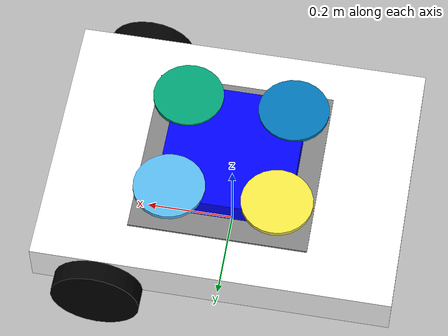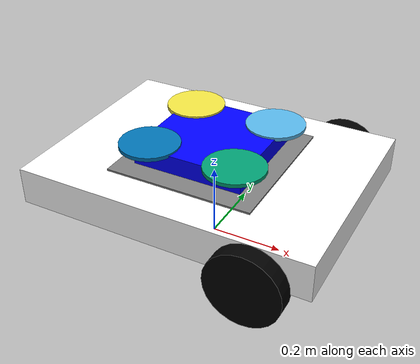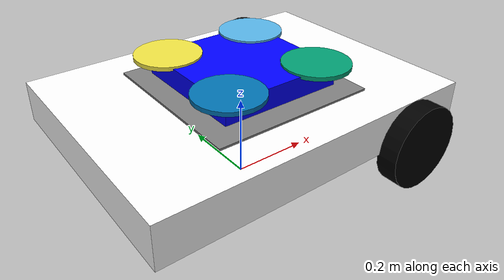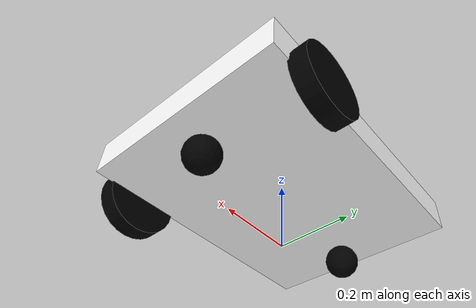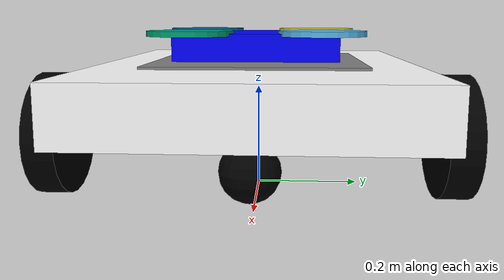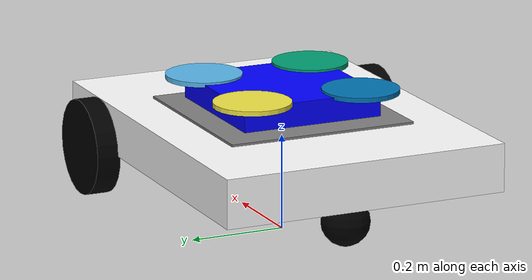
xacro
<?xml version="1.0"?>
<robot name="hybrid_robot" xmlns:xacro="http://www.ros.org/wiki/xacro">

    <xacro:include filename="hybrid_terrestrial.xacro" />
    <xacro:include filename="hybrid_aerial.xacro" />

    <link name="base_footprint"/>

    <joint name="base_footprint_joint" type="fixed">
        <parent link="base_footprint"/>
        <child link="world_anchor"/>
        <origin xyz="0 0 0" rpy="0 0 0"/>
    </joint>

    <link name="world_anchor">
        <inertial>
            <mass value="10.0"/>
            <inertia ixx="0.01" ixy="0" ixz="0" iyy="0.01" iyz="0" izz="0.01"/>
        </inertial>
    </link>

    <joint name="lift_joint" type="prismatic">
        <parent link="world_anchor" />
        <child link="base_link" />
        <origin xyz="0 0 0.05" rpy="0 0 0" />
        <axis xyz="0 0 1" />
        <limit lower="0.0" upper="5.0" effort="2000.0" velocity="2.0" />
        <dynamics damping="1.0" friction="0.0" />
    </joint>

    <xacro:drone_assembly />
    <joint name="drone_fixed_mount" type="fixed">
        <parent link="landing_pad" />
        <child link="drone_base_link" />
        <origin xyz="0 0 0.01" rpy="0 0 0" />
    </joint>

    <gazebo reference="lift_joint">
        <implicitSpringDamper>true</implicitSpringDamper>
    </gazebo>
    <gazebo reference="left_wheel_joint">
        <implicitSpringDamper>true</implicitSpringDamper>
    </gazebo>
    <gazebo reference="right_wheel_joint">
        <implicitSpringDamper>true</implicitSpringDamper>
    </gazebo>

    <ros2_control name="HybridControl" type="system">
        <hardware>
            <plugin>gazebo_ros2_control/GazeboSystem</plugin>
        </hardware>
        <joint name="left_wheel_joint">
            <command_interface name="velocity"/>
            <state_interface name="velocity"/>
            <state_interface name="position"/>
        </joint>
        <joint name="right_wheel_joint">
            <command_interface name="velocity"/>
            <state_interface name="velocity"/>
            <state_interface name="position"/>
        </joint>
        <joint name="lift_joint">
            <command_interface name="position"/>
            <state_interface name="position"/>
            <state_interface name="velocity"/>
        </joint>
    </ros2_control>

    <gazebo reference="world_anchor">
        <gravity>false</gravity>
    </gazebo>

    <gazebo>
        <plugin name="drone_flight_controller" filename="libgazebo_ros_planar_move.so">
            <ros>
                <namespace>/</namespace>
                <parameter name="use_sim_time" value="true" />
                <remapping>cmd_vel:=cmd_drone</remapping>
                <remapping>odom:=odom_drone</remapping>
            </ros>
            <update_rate>100</update_rate>
            <publish_rate>50</publish_rate>
            <publish_odom>true</publish_odom>
            <publish_odom_tf>true</publish_odom_tf>

            <robotBaseFrame>world_anchor</robotBaseFrame>
            <odometryFrame>odom</odometryFrame>
        </plugin>
    </gazebo>

    <gazebo>
        <plugin filename="libgazebo_ros2_control.so" name="gazebo_ros2_control">
            <parameters>$(find hybrid_robot_description)/config/terrestrial_control.yaml</parameters>
        </plugin>
    </gazebo>
</robot>

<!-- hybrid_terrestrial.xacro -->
<robot name="hybrid_robot" xmlns:xacro="http://www.ros.org/wiki/xacro">

    <xacro:property name="wheel_radius" value="0.1" />
    <xacro:property name="base_height" value="0.1" />
    <xacro:property name="base_mass" value="5.0" />
    <xacro:property name="base_length" value="0.8" />
    <xacro:property name="base_width" value="0.6" />
    <xacro:property name="wheel_width" value="0.05" />
    <xacro:property name="wheel_separation" value="0.64" />
    <xacro:property name="caster_radius" value="0.05" />
    <xacro:property name="caster_mass" value="0.1" />

    <xacro:macro name="default_inertial" params="mass">
        <inertial>
            <mass value="${mass}" />
            <inertia ixx="${0.08 * mass}" ixy="0.0" ixz="0.0" iyy="${0.08 * mass}" iyz="0.0" izz="${0.08 * mass}"/>
        </inertial>
    </xacro:macro>

    <link name="base_link">
        <visual>
            <origin xyz="0 0 ${wheel_radius + base_height/2}" rpy="0 0 0" />
            <geometry><box size="${base_length} ${base_width} ${base_height}" /></geometry>
            <material name="White"><color rgba="1 1 1 1"/></material>
        </visual>
        <collision>
            <origin xyz="0 0 ${wheel_radius + base_height/2}" rpy="0 0 0" />
            <geometry><box size="${base_length} ${base_width} ${base_height}" /></geometry>
        </collision>
        <xacro:default_inertial mass="${base_mass}"/>
    </link>

    <xacro:macro name="wheel_link" params="prefix parent_link x_offset y_offset">
        <link name="${prefix}_wheel_link">
            <visual>
                <origin xyz="0 0 0" rpy="1.5708 0 0" />
                <geometry><cylinder radius="${wheel_radius}" length="${wheel_width}" /></geometry>
                <material name="Black"><color rgba="0 0 0 1"/></material>
            </visual>
            <collision>
                <origin xyz="0 0 0" rpy="1.5708 0 0" />
                <geometry><cylinder radius="${wheel_radius}" length="${wheel_width}" /></geometry>
            </collision>
            <xacro:default_inertial mass="0.5" />
        </link>
        <gazebo reference="${prefix}_wheel_link">
            <material>Gazebo/Black</material>
            <mu1 value="1.0"/><mu2 value="1.0"/>
        </gazebo>
        <joint name="${prefix}_wheel_joint" type="continuous">
            <origin xyz="${x_offset} ${y_offset} ${wheel_radius}" rpy="0 0 0" />
            <parent link="${parent_link}" />
            <child link="${prefix}_wheel_link" />
            <axis xyz="0 1 0" />
        </joint>
    </xacro:macro>

    <xacro:wheel_link prefix="left" parent_link="base_link" x_offset="0.25" y_offset="${wheel_separation/2}" />
    <xacro:wheel_link prefix="right" parent_link="base_link" x_offset="0.25" y_offset="-${wheel_separation/2}" />

    <link name="caster_front_link">
        <visual><geometry><sphere radius="${caster_radius}"/></geometry><material name="Black"/></visual>
        <collision><geometry><sphere radius="${caster_radius}"/></geometry></collision>
        <xacro:default_inertial mass="${caster_mass}"/>
    </link>
    <joint name="caster_front_joint" type="fixed">
        <origin xyz="${base_length/2 - caster_radius*2} 0 ${caster_radius}" rpy="0 0 0"/>
        <parent link="base_link" /><child link="caster_front_link" />
    </joint>

    <link name="caster_rear_link">
        <visual><geometry><sphere radius="${caster_radius}"/></geometry><material name="Black"/></visual>
        <collision><geometry><sphere radius="${caster_radius}"/></geometry></collision>
        <xacro:default_inertial mass="${caster_mass}"/>
    </link>
    <joint name="caster_rear_joint" type="fixed">
        <origin xyz="${-base_length/2 + caster_radius*2} 0 ${caster_radius}" rpy="0 0 0"/>
        <parent link="base_link" /><child link="caster_rear_link" />
    </joint>

    <link name="landing_pad">
        <visual>
            <origin xyz="0 0 0" rpy="0 0 0" />
            <geometry><box size="0.4 0.4 0.01" /></geometry>
            <material name="Grey"><color rgba="0.5 0.5 0.5 1"/></material>
        </visual>
        <collision>
            <origin xyz="0 0 0" rpy="0 0 0" />
            <geometry><box size="0.4 0.4 0.01" /></geometry>
        </collision>
        <xacro:default_inertial mass="0.1"/>
    </link>

    <joint name="landing_pad_joint" type="fixed">
        <parent link="base_link" />
        <child link="landing_pad" />
        <origin xyz="0 0 0.2" rpy="0 0 0" />
    </joint>

    <gazebo reference="base_link">
        <material>Gazebo/Green</material>
    </gazebo>

</robot>

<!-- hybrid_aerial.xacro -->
<robot xmlns:xacro="http://www.ros.org/wiki/xacro">
    <xacro:macro name="drone_assembly">
        <link name="drone_base_link">
            <visual>
                <origin xyz="0 0 0.025" rpy="0 0 0" />
                <geometry><box size="0.3 0.3 0.05" /></geometry>
                <material name="Blue"><color rgba="0 0 1 1"/></material>
            </visual>
            <collision>
                <origin xyz="0 0 0.025" rpy="0 0 0" />
                <geometry><box size="0.3 0.3 0.05" /></geometry>
            </collision>
            <inertial>
                <mass value="1.0" />
                <inertia ixx="0.01" ixy="0" ixz="0" iyy="0.01" iyz="0" izz="0.02" />
            </inertial>
        </link>

        <xacro:macro name="prop" params="p_name x y">
            <link name="${p_name}_link">
                <visual><geometry><cylinder radius="0.08" length="0.01"/></geometry></visual>
                <material name="Black"><color rgba="0 0 0 1"/></material>
            </link>
            <joint name="${p_name}_joint" type="fixed">
                <parent link="drone_base_link"/><child link="${p_name}_link"/>
                <origin xyz="${x} ${y} 0.05" rpy="0 0 0"/>
            </joint>
        </xacro:macro>
        <xacro:prop p_name="fl" x="0.12" y="0.12"/><xacro:prop p_name="fr" x="0.12" y="-0.12"/>
        <xacro:prop p_name="rl" x="-0.12" y="0.12"/><xacro:prop p_name="rr" x="-0.12" y="-0.12"/>
    </xacro:macro>
</robot>
